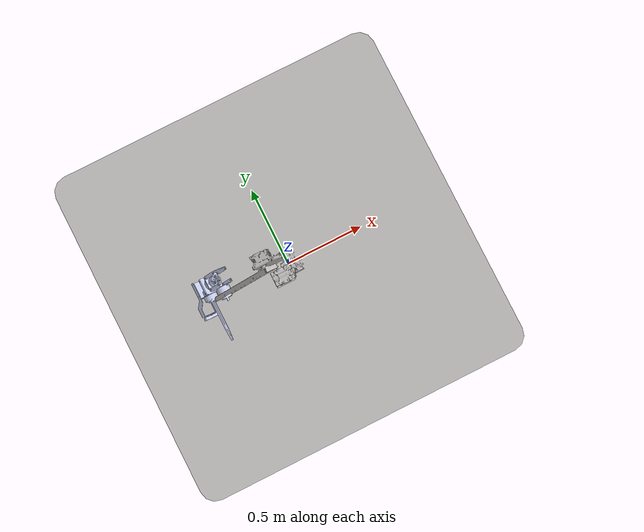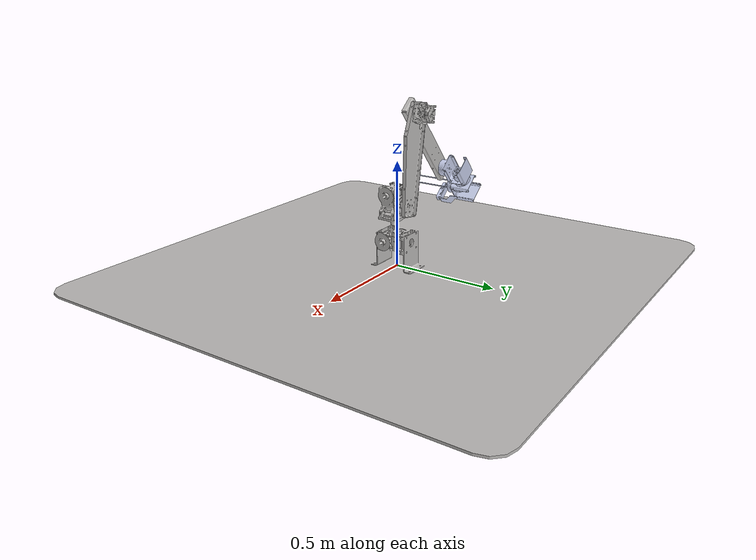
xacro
<?xml version="1.0"?>
<robot xmlns:xacro="http://www.ros.org/wiki/xacro" name="skai_arm">
    <xacro:arg name="initial_positions_file" default="initial_positions.yaml" />

    <!-- Import skai_arm urdf file -->
    <xacro:include filename="$(find arm_rviz)/urdf/skai_arm.urdf" />

    <!-- Import control_xacro -->
    <xacro:include filename="skai_arm.ros2_control.xacro" />

    <xacro:skai_arm_ros2_control name="skai_arm" initial_positions_file="$(arg initial_positions_file)"/>

</robot>

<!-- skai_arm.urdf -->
<robot
  name="skai_arm">
  <link
    name="BASE">
    <inertial>
      <origin
        xyz="-0.064016 0.11562 0.080031"
        rpy="0 0 0" />
      <mass
        value="1.1031" />
      <inertia
        ixx="0.0023261"
        ixy="-1.4598E-06"
        ixz="-0.0001122"
        iyy="0.0024963"
        iyz="-5.3023E-06"
        izz="0.0023583" />
    </inertial>
    <visual>
      <origin
        xyz="0 0 0"
        rpy="0 0 0" />
      <geometry>
        <mesh
          filename="package://arm_rviz/meshes/BASE.STL" />
      </geometry>
      <material
        name="">
        <color
          rgba="0.7451 0.73725 0.72941 1" />
      </material>
    </visual>
    <collision>
      <origin
        xyz="0 0 0"
        rpy="0 0 0" />
      <geometry>
        <mesh
          filename="package://arm_rviz/meshes/BASE.STL" />
      </geometry>
    </collision>
  </link>
  <link
    name="J_1">
    <inertial>
      <origin
        xyz="0.0030632 -0.00037054 0.19009"
        rpy="0 0 0" />
      <mass
        value="1.089" />
      <inertia
        ixx="0.0018485"
        ixy="-1.4598E-06"
        ixz="-0.00011196"
        iyy="0.0024341"
        iyz="-5.3023E-06"
        izz="0.001692" />
    </inertial>
    <visual>
      <origin
        xyz="0 0 0"
        rpy="0 0 0" />
      <geometry>
        <mesh
          filename="package://arm_rviz/meshes/J_1.STL" />
      </geometry>
      <material
        name="">
        <color
          rgba="0.7451 0.73725 0.72941 1" />
      </material>
    </visual>
    <collision>
      <origin
        xyz="0 0 0"
        rpy="0 0 0" />
      <geometry>
        <mesh
          filename="package://arm_rviz/meshes/J_1.STL" />
      </geometry>
    </collision>
  </link>
  <joint
    name="ROT_1"
    type="revolute">
    <origin
      xyz="-0.067 -0.065 0.082"
      rpy="0 0 0" />
    <parent
      link="BASE" />
    <child
      link="J_1" />
    <axis
      xyz="0 0 -1" />
    <limit
      lower="-3.14"
      upper="3.14"
      effort="10"
      velocity="0.1" />
  </joint>
  <link
    name="J_2">
    <inertial>
      <origin
        xyz="-0.25856 0.13854 0.13905"
        rpy="0 0 0" />
      <mass
        value="0.721" />
      <inertia
        ixx="0.0019755"
        ixy="0.0020808"
        ixz="-3.9585E-06"
        iyy="0.004707"
        iyz="1.0786E-06"
        izz="0.00632" />
    </inertial>
    <visual>
      <origin
        xyz="0 0 0"
        rpy="0 0 0" />
      <geometry>
        <mesh
          filename="package://arm_rviz/meshes/J_2.STL" />
      </geometry>
      <material
        name="">
        <color
          rgba="0.7451 0.73725 0.72941 1" />
      </material>
    </visual>
    <collision>
      <origin
        xyz="0 0 0"
        rpy="0 0 0" />
      <geometry>
        <mesh
          filename="package://arm_rviz/meshes/J_2.STL" />
      </geometry>
    </collision>
  </link>
  <joint
    name="PITCH_1"
    type="revolute">
    <origin
      xyz="0 -0.046 0.194"
      rpy="1.5708 1.2217 3.1416" />
    <parent
      link="J_1" />
    <child
      link="J_2" />
    <axis
      xyz="0 0 -1" />
    <limit
      lower="-1.57"
      upper="1.57"
      effort="10"
      velocity="0.1" />
  </joint>
  <link
    name="J_3">
    <inertial>
      <origin
        xyz="0.15412 -0.0055136 0.088982"
        rpy="0 0 0" />
      <mass
        value="0.21768" />
      <inertia
        ixx="0.0012955"
        ixy="7.1563E-06"
        ixz="-0.0018514"
        iyy="0.0047078"
        iyz="4.1274E-06"
        izz="0.0034333" />
    </inertial>
    <visual>
      <origin
        xyz="0 0 0"
        rpy="0 0 0" />
      <geometry>
        <mesh
          filename="package://arm_rviz/meshes/J_3.STL" />
      </geometry>
      <material
        name="">
        <color
          rgba="0.7451 0.73725 0.72941 1" />
      </material>
    </visual>
    <collision>
      <origin
        xyz="0 0 0"
        rpy="0 0 0" />
      <geometry>
        <mesh
          filename="package://arm_rviz/meshes/J_3.STL" />
      </geometry>
    </collision>
  </link>
  <joint
    name="PITCH_2"
    type="revolute">
    <origin
      xyz="-0.37152 0.2145 0.107"
      rpy="1.5708 0 0.87266" />
    <parent
      link="J_2" />
    <child
      link="J_3" />
    <axis
      xyz="0 1 0" />
    <limit
      lower="-3.14"
      upper="3.14"
      effort="10"
      velocity="0.1" />
  </joint>
  <link
    name="J_4">
    <inertial>
      <origin
        xyz="0.0015946 0.0041989 -0.028525"
        rpy="0 0 0" />
      <mass
        value="0.2071" />
      <inertia
        ixx="0.00034764"
        ixy="1.6788E-07"
        ixz="-4.447E-08"
        iyy="0.00034785"
        iyz="-2.7415E-07"
        izz="0.00030028" />
    </inertial>
    <visual>
      <origin
        xyz="0 0 0"
        rpy="0 0 0" />
      <geometry>
        <mesh
          filename="package://arm_rviz/meshes/J_4.STL" />
      </geometry>
      <material
        name="">
        <color
          rgba="0.79216 0.81961 0.93333 1" />
      </material>
    </visual>
    <collision>
      <origin
        xyz="0 0 0"
        rpy="0 0 0" />
      <geometry>
        <mesh
          filename="package://arm_rviz/meshes/J_4.STL" />
      </geometry>
    </collision>
  </link>
  <joint
    name="PITCH_3"
    type="revolute">
    <origin
      xyz="0.3542 0.012 0.2045"
      rpy="1.5708 0.68579 0" />
    <parent
      link="J_3" />
    <child
      link="J_4" />
    <axis
      xyz="0 0 1" />
    <limit
      lower="-6.28"
      upper="6.28"
      effort="10"
      velocity="0.1" />
  </joint>
  <link
    name="J_5">
    <inertial>
      <origin
        xyz="-0.010591 -1.028232 -0.053684"
        rpy="0 0 0" />
      <mass
        value="0.26391" />
      <inertia
        ixx="0.00046898"
        ixy="-7.9386E-06"
        ixz="-1.1352E-05"
        iyy="0.00045081"
        iyz="-2.9949E-05"
        izz="0.00049256" />
    </inertial>
    <visual>
      <origin
        xyz="0 0 0"
        rpy="0 0 0" />
      <geometry>
        <mesh
          filename="package://arm_rviz/meshes/J_5.STL" />
      </geometry>
      <material
        name="">
        <color
          rgba="0.79216 0.81961 0.93333 1" />
      </material>
    </visual>
    <collision>
      <origin
        xyz="0 0 0"
        rpy="0 0 0" />
      <geometry>
        <mesh
          filename="package://arm_rviz/meshes/J_5.STL" />
      </geometry>
    </collision>
  </link>
  <joint
    name="ROT_2"
    type="revolute">
    <origin
      xyz="0.023514 0.062204 -0.0725"
      rpy="-1.5708 0.3614 2.7802" />
    <parent
      link="J_4" />
    <child
      link="J_5" />
    <axis
      xyz="0 0 -1" />
    <limit
      lower="-6.28"
      upper="6.28"
      effort="10"
      velocity="0.1" />
  </joint>
  <link
    name="J_6">
    <inertial>
      <origin
        xyz="1.5103E-05 1.3545E-05 -0.26408"
        rpy="0 0 0" />
      <mass
        value="0.14576" />
      <inertia
        ixx="0.00029182"
        ixy="8.1929E-07"
        ixz="-6.0976E-08"
        iyy="0.00028743"
        iyz="-9.8159E-09"
        izz="0.00011651" />
    </inertial>
    <visual>
      <origin
        xyz="0 0 0"
        rpy="0 0 0" />
      <geometry>
        <mesh
          filename="package://arm_rviz/meshes/J_6.STL" />
      </geometry>
      <material
        name="">
        <color
          rgba="0.79216 0.81961 0.93333 1" />
      </material>
    </visual>
    <collision>
      <origin
        xyz="0 0 0"
        rpy="0 0 0" />
      <geometry>
        <mesh
          filename="package://arm_rviz/meshes/J_6.STL" />
      </geometry>
    </collision>
  </link>
  <joint
    name="ROT_3"
    type="revolute">
    <origin
      xyz="-0.12262 -0.3244 -0.0725"
      rpy="1.5708 -0.69813 -0.3614" />
    <parent
      link="J_5" />
    <child
      link="J_6" />
    <axis
      xyz="0 0 -1" />
    <limit
      lower="-6.28"
      upper="6.28"
      effort="10"
      velocity="0.1" />
  </joint>
</robot>
